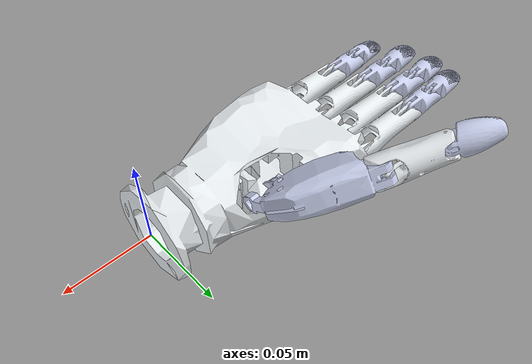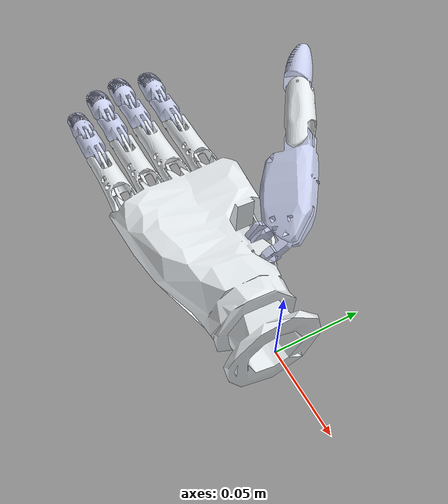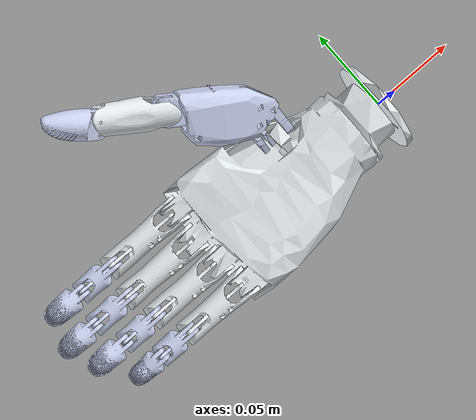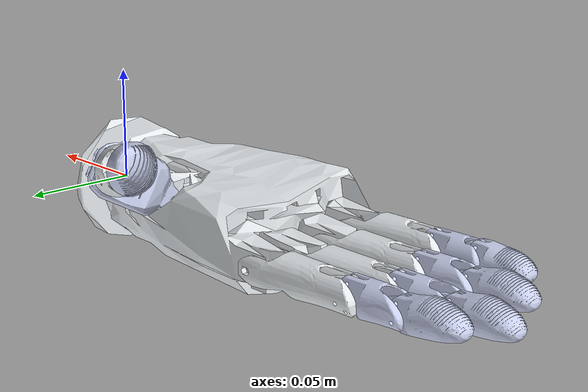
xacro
<?xml version="1.0" encoding="utf-8"?>
<robot
  name="rh_robothand_a0" xmlns:xacro="http://www.ros.org/wiki/xacro">
  <link
    name="rh_base_link">
    <inertial>
      <origin
        xyz="-0.0771315633048101 0.000550496064865218 -0.000878012041051911"
        rpy="0 0 0" />
      <mass
        value="0.264420980793865" />
      <inertia
        ixx="9.65922247312353E-05"
        ixy="3.79364211156786E-06"
        ixz="-2.74127423073502E-06"
        iyy="0.000130636569487036"
        iyz="4.12957678967436E-07"
        izz="0.000185626731781119" />
    </inertial>
    <visual>
      <origin
        xyz="0 0 0"
        rpy="0 0 0" />
      <geometry>
        <mesh
          filename="package://rh_robothand_a0_description/meshes/base_link.STL" />
      </geometry>
      <material
        name="">
        <color
          rgba="0.898039215686275 0.917647058823529 0.929411764705882 1" />
      </material>
    </visual>
    <collision>
      <origin
        xyz="-0.11 0 0"
        rpy="0 0 0" />
      <geometry>
        <box size="0.22 0.08 0.05"/>
      </geometry>
    </collision>
  </link>
  <link
    name="rh_LF1_Link">
    <inertial>
      <origin
        xyz="0.00111100024125576 -0.0243220192544273 -0.00176169275516479"
        rpy="0 0 0" />
      <mass
        value="0.0076305557950374" />
      <inertia
        ixx="1.35667005711329E-06"
        ixy="4.66789462745626E-10"
        ixz="-6.67193131781163E-11"
        iyy="1.62181652444189E-07"
        iyz="-2.84013230615189E-08"
        izz="1.26101212938848E-06" />
    </inertial>
    <visual>
      <origin
        xyz="0 0 0"
        rpy="0 0 0" />
      <geometry>
        <mesh
          filename="package://rh_robothand_a0_description/meshes/LF1_Link.STL" />
      </geometry>
      <material
        name="">
        <color
          rgba="0.898039215686275 0.917647058823529 0.929411764705882 1" />
      </material>
    </visual>
  </link>
  <joint
    name="rh_LF1"
    type="revolute">
    <origin
      xyz="-0.120667710792653 -0.0276205870569372 -0.0012196779370232"
      rpy="-3.14159265358979 0 1.5707963267949" />
    <parent
      link="rh_base_link" />
    <child
      link="rh_LF1_Link" />
    <axis
      xyz="-1 0 0" />
    <limit
      lower="-1.57"
      upper="0"
      effort="1"
      velocity="-0.5" />
    <dynamics
      damping="0.1"
      friction="0.1" />
    <mimic
      joint="rh_LF2"
      multiplier="1.8"
      offset="0" />
  </joint>
  <link
    name="rh_LF2_Link">
    <inertial>
      <origin
        xyz="-0.00104817337540824 -0.0116661936288779 0.00269074989953632"
        rpy="0 0 0" />
      <mass
        value="0.00204066265868655" />
      <inertia
        ixx="1.17778671570237E-07"
        ixy="-1.62775252396335E-10"
        ixz="1.1302836512966E-11"
        iyy="5.26718353122828E-08"
        iyz="3.53855830609837E-09"
        izz="1.21053493816484E-07" />
    </inertial>
    <visual>
      <origin
        xyz="0 0 0"
        rpy="0 0 0" />
      <geometry>
        <mesh
          filename="package://rh_robothand_a0_description/meshes/LF2_Link.STL" />
      </geometry>
      <material
        name="">
        <color
          rgba="0.796078431372549 0.823529411764706 0.937254901960784 1" />
      </material>
    </visual>
  </link>
  <joint
    name="rh_LF2"
    type="revolute">
    <origin
      xyz="0 -0.0400984606909391 -0.000233749430079859"
      rpy="3.14159265358979 0 3.14159265358979" />
    <parent
      link="rh_LF1_Link" />
    <child
      link="rh_LF2_Link" />
    <axis
      xyz="1 0 0" />
    <limit
      lower="-1.57"
      upper="0"
      effort="1"
      velocity="-0.5" />
    <dynamics
      damping="0.1"
      friction="0.1" />
    <mimic
      joint="rh_LF3"
      multiplier="1.8"
      offset="0" />
  </joint>
  <link
    name="rh_LF3_Link">
    <inertial>
      <origin
        xyz="-0.00105495450411704 -0.0102181768353214 0.00195647033954117"
        rpy="0 0 0" />
      <mass
        value="0.00243753133684015" />
      <inertia
        ixx="7.38791296895743E-08"
        ixy="1.49609271067263E-10"
        ixz="3.93391476730846E-11"
        iyy="3.99033735571686E-08"
        iyz="-1.41272693795679E-08"
        izz="7.62686330710667E-08" />
    </inertial>
    <visual>
      <origin
        xyz="0 0 0"
        rpy="0 0 0" />
      <geometry>
        <mesh
          filename="package://rh_robothand_a0_description/meshes/LF3_Link.STL" />
      </geometry>
      <material
        name="">
        <color
          rgba="0.796078431372549 0.823529411764706 0.937254901960784 1" />
      </material>
    </visual>
  </link>
  <joint
    name="rh_LF3"
    type="revolute">
    <origin
      xyz="4.99999999999043E-05 -0.0219426636355103 0.00158729725598191"
      rpy="0 0 0" />
    <parent
      link="rh_LF2_Link" />
    <child
      link="rh_LF3_Link" />
    <axis
      xyz="1 0 0" />
    <limit
      lower="-1"
      upper="0"
      effort="1"
      velocity="-0.5" />
    <dynamics
      damping="0.1"
      friction="0.1" />
  </joint>
  <link
    name="rh_RF1_Link">
    <inertial>
      <origin
        xyz="0.000820796423871568 -0.0262118595257119 -0.00188459504333765"
        rpy="0 0 0" />
      <mass
        value="0.00847314272707846" />
      <inertia
        ixx="1.86742668405035E-06"
        ixy="8.99349213555806E-10"
        ixz="-8.85319552426498E-11"
        iyy="1.63712775819506E-07"
        iyz="-2.06745517373156E-08"
        izz="1.77413216715691E-06" />
    </inertial>
    <visual>
      <origin
        xyz="0 0 0"
        rpy="0 0 0" />
      <geometry>
        <mesh
          filename="package://rh_robothand_a0_description/meshes/RF1_Link.STL" />
      </geometry>
      <material
        name="">
        <color
          rgba="0.898039215686275 0.917647058823529 0.929411764705882 1" />
      </material>
    </visual>
  </link>
  <joint
    name="rh_RF1"
    type="revolute">
    <origin
      xyz="-0.124667710792653 -0.00861989487209627 -0.00321967793702238"
      rpy="-3.14159265358979 0 1.5707963267949" />
    <parent
      link="rh_base_link" />
    <child
      link="rh_RF1_Link" />
    <axis
      xyz="-1 0 0" />
    <limit
      lower="-1.57"
      upper="0"
      effort="1"
      velocity="-0.5" />
    <dynamics
      damping="0.1"
      friction="0.1" />
    <mimic
      joint="rh_RF2"
      multiplier="1.8"
      offset="0" />
  </joint>
  <link
    name="rh_RF2_Link">
    <inertial>
      <origin
        xyz="-0.000902951596117497 -0.0126280881225271 0.00262967210406026"
        rpy="0 0 0" />
      <mass
        value="0.00216268866837306" />
      <inertia
        ixx="1.41711926667217E-07"
        ixy="-1.51197748976381E-10"
        ixz="-1.14724072124332E-11"
        iyy="5.52662064383787E-08"
        iyz="1.64557670781368E-09"
        izz="1.46903775339198E-07" />
    </inertial>
    <visual>
      <origin
        xyz="0 0 0"
        rpy="0 0 0" />
      <geometry>
        <mesh
          filename="package://rh_robothand_a0_description/meshes/RF2_Link.STL" />
      </geometry>
      <material
        name="">
        <color
          rgba="0.796078431372549 0.823529411764706 0.937254901960784 1" />
      </material>
    </visual>
  </link>
  <joint
    name="rh_RF2"
    type="revolute">
    <origin
      xyz="0 -0.0444999999936167 -0.000238749430078784"
      rpy="3.14159265358979 0 3.14159265358979" />
    <parent
      link="rh_RF1_Link" />
    <child
      link="rh_RF2_Link" />
    <axis
      xyz="1 0 0" />
    <limit
      lower="-1.57"
      upper="0"
      effort="1"
      velocity="-0.5" />
    <dynamics
      damping="0.1"
      friction="0.1" />
    <mimic
      joint="rh_RF3"
      multiplier="1.8"
      offset="0" />
  </joint>
  <link
    name="rh_RF3_Link">
    <inertial>
      <origin
        xyz="-0.000703365419428665 -0.0122037109807715 0.00356867915555399"
        rpy="0 0 0" />
      <mass
        value="0.00337008134334144" />
      <inertia
        ixx="1.25166789765623E-07"
        ixy="4.343373843868E-11"
        ixz="5.06915685346187E-11"
        iyy="6.19427433699616E-08"
        iyz="-1.72114517401565E-08"
        izz="1.35209619915522E-07" />
    </inertial>
    <visual>
      <origin
        xyz="0 0 0"
        rpy="0 0 0" />
      <geometry>
        <mesh
          filename="package://rh_robothand_a0_description/meshes/RF3_Link.STL" />
      </geometry>
      <material
        name="">
        <color
          rgba="0.796078431372549 0.823529411764706 0.937254901960784 1" />
      </material>
    </visual>
  </link>
  <joint
    name="rh_RF3"
    type="revolute">
    <origin
      xyz="-0.000200000000000051 -0.024496145135367 0.000434595797305881"
      rpy="0 0 0" />
    <parent
      link="rh_RF2_Link" />
    <child
      link="rh_RF3_Link" />
    <axis
      xyz="1 0 0" />
    <limit
      lower="-1"
      upper="0"
      effort="1"
      velocity="-0.5" />
    <dynamics
      damping="0.1"
      friction="0.1" />
  </joint>
  <link
    name="rh_MF1_Link">
    <inertial>
      <origin
        xyz="0.00102636353024867 -0.0277555297254293 -0.00193930885655732"
        rpy="0 0 0" />
      <mass
        value="0.00985006169632293" />
      <inertia
        ixx="2.3533652764249E-06"
        ixy="1.11633351017212E-09"
        ixz="3.15270283785722E-11"
        iyy="2.01845604038941E-07"
        iyz="-3.02263299219902E-08"
        izz="2.2339166399137E-06" />
    </inertial>
    <visual>
      <origin
        xyz="0 0 0"
        rpy="0 0 0" />
      <geometry>
        <mesh
          filename="package://rh_robothand_a0_description/meshes/MF1_Link.STL" />
      </geometry>
      <material
        name="">
        <color
          rgba="0.898039215686275 0.917647058823529 0.929411764705882 1" />
      </material>
    </visual>
  </link>
  <joint
    name="rh_MF1"
    type="revolute">
    <origin
      xyz="-0.126667710792653 0.00957941294306249 -0.00471967793702235"
      rpy="3.14159265358979 0 1.5707963267949" />
    <parent
      link="rh_base_link" />
    <child
      link="rh_MF1_Link" />
    <axis
      xyz="-1 0 0" />
    <limit
      lower="-1.57"
      upper="0"
      effort="1"
      velocity="-0.5" />
    <dynamics
      damping="0.1"
      friction="0.1" />
    <mimic
      joint="rh_MF2"
      multiplier="1.8"
      offset="0" />
  </joint>
  <link
    name="rh_MF2_Link">
    <inertial>
      <origin
        xyz="-0.00104307276229463 -0.0135838572124982 0.00246216330949421"
        rpy="0 0 0" />
      <mass
        value="0.00228824564195563" />
      <inertia
        ixx="1.70509222822927E-07"
        ixy="-1.57024143183247E-10"
        ixz="1.65317264307165E-11"
        iyy="5.93511820754865E-08"
        iyz="2.62979727863687E-11"
        izz="1.78362250956455E-07" />
    </inertial>
    <visual>
      <origin
        xyz="0 0 0"
        rpy="0 0 0" />
      <geometry>
        <mesh
          filename="package://rh_robothand_a0_description/meshes/MF2_Link.STL" />
      </geometry>
      <material
        name="">
        <color
          rgba="0.796078431372549 0.823529411764706 0.937254901960784 1" />
      </material>
    </visual>
  </link>
  <joint
    name="rh_MF2"
    type="revolute">
    <origin
      xyz="0 -0.0474999999936168 -0.000238749430078922"
      rpy="3.14159265358979 0 -3.14159265358979" />
    <parent
      link="rh_MF1_Link" />
    <child
      link="rh_MF2_Link" />
    <axis
      xyz="1 0 0" />
    <limit
      lower="-1.57"
      upper="0"
      effort="1"
      velocity="-0.5" />
    <dynamics
      damping="0.1"
      friction="0.1" />
    <mimic
      joint="rh_MF3"
      multiplier="1.8"
      offset="0" />
  </joint>
  <link
    name="rh_MF3_Link">
    <inertial>
      <origin
        xyz="-0.00100636785975747 -0.0123647736791516 0.00295571439606786"
        rpy="0 0 0" />
      <mass
        value="0.00336503153264149" />
      <inertia
        ixx="1.2557241842048E-07"
        ixy="5.10104696467692E-11"
        ixz="2.70455198461692E-11"
        iyy="6.35457112705361E-08"
        iyz="-2.09090029711852E-08"
        izz="1.32489650466898E-07" />
    </inertial>
    <visual>
      <origin
        xyz="0 0 0"
        rpy="0 0 0" />
      <geometry>
        <mesh
          filename="package://rh_robothand_a0_description/meshes/MF3_Link.STL" />
      </geometry>
      <material
        name="">
        <color
          rgba="0.796078431372549 0.823529411764706 0.937254901960784 1" />
      </material>
    </visual>
  </link>
  <joint
    name="rh_MF3"
    type="revolute">
    <origin
      xyz="0 -0.0264999981219051 0"
      rpy="0 0 0" />
    <parent
      link="rh_MF2_Link" />
    <child
      link="rh_MF3_Link" />
    <axis
      xyz="1 0 0" />
    <limit
      lower="-1"
      upper="0"
      effort="1"
      velocity="-0.5" />
    <dynamics
      damping="0.1"
      friction="0.1" />
  </joint>
  <link
    name="rh_FF1_Link">
    <inertial>
      <origin
        xyz="0.000820796423869424 -0.0262118595257167 -0.00188459504333683"
        rpy="0 0 0" />
      <mass
        value="0.00847314272707745" />
      <inertia
        ixx="1.8674266840491E-06"
        ixy="8.99349213630073E-10"
        ixz="-8.85319552535142E-11"
        iyy="1.63704475834967E-07"
        iyz="-2.06701781334727E-08"
        izz="1.77414046714019E-06" />
    </inertial>
    <visual>
      <origin
        xyz="0 0 0"
        rpy="0 0 0" />
      <geometry>
        <mesh
          filename="package://rh_robothand_a0_description/meshes/FF1_Link.STL" />
      </geometry>
      <material
        name="">
        <color
          rgba="0.898039215686275 0.917647058823529 0.929411764705882 1" />
      </material>
    </visual>
  </link>
  <joint
    name="rh_FF1"
    type="revolute">
    <origin
      xyz="-0.124667710792653 0.0283801051279036 -0.00321967793702234"
      rpy="3.14159265358979 0 1.57079632679489" />
    <parent
      link="rh_base_link" />
    <child
      link="rh_FF1_Link" />
    <axis
      xyz="-1 0 0" />
    <limit
      lower="-1.57"
      upper="0"
      effort="1"
      velocity="-0.5" />
    <dynamics
      damping="0.1"
      friction="0.1" />
    <mimic
      joint="rh_FF2"
      multiplier="1.8"
      offset="0" />
  </joint>
  <link
    name="rh_FF2_Link">
    <inertial>
      <origin
        xyz="-0.000876427685851701 -0.0126280888421312 0.00262967239679973"
        rpy="0 0 0" />
      <mass
        value="0.00216268848240887" />
      <inertia
        ixx="1.41711909816515E-07"
        ixy="-1.51194639208851E-10"
        ixz="-1.14737080958454E-11"
        iyy="5.52662028233286E-08"
        iyz="1.64557048809625E-09"
        izz="1.46903760637511E-07" />
    </inertial>
    <visual>
      <origin
        xyz="0 0 0"
        rpy="0 0 0" />
      <geometry>
        <mesh
          filename="package://rh_robothand_a0_description/meshes/FF2_Link.STL" />
      </geometry>
      <material
        name="">
        <color
          rgba="0.796078431372549 0.823529411764706 0.937254901960784 1" />
      </material>
    </visual>
  </link>
  <joint
    name="rh_FF2"
    type="revolute">
    <origin
      xyz="0 -0.0444999999936168 -0.000238749430078741"
      rpy="3.14159265358979 0 3.14159265358979" />
    <parent
      link="rh_FF1_Link" />
    <child
      link="rh_FF2_Link" />
    <axis
      xyz="1 0 0" />
    <limit
      lower="-1.57"
      upper="0"
      effort="1"
      velocity="-0.5" />
    <dynamics
      damping="0.1"
      friction="0.1" />
    <mimic
      joint="rh_FF3"
      multiplier="1.8"
      offset="0" />
  </joint>
  <link
    name="rh_FF3_Link">
    <inertial>
      <origin
        xyz="-0.000903358498992264 -0.0122037900802425 0.00356868608685759"
        rpy="0 0 0" />
      <mass
        value="0.00337011127275863" />
      <inertia
        ixx="1.25169688921475E-07"
        ixy="4.32936421175694E-11"
        ixz="5.0578196338882E-11"
        iyy="6.19428340213359E-08"
        iyz="-1.72118412336496E-08"
        izz="1.3521254363382E-07" />
    </inertial>
    <visual>
      <origin
        xyz="0 0 0"
        rpy="0 0 0" />
      <geometry>
        <mesh
          filename="package://rh_robothand_a0_description/meshes/FF3_Link.STL" />
      </geometry>
      <material
        name="">
        <color
          rgba="0.796078431372549 0.823529411764706 0.937254901960784 1" />
      </material>
    </visual>
  </link>
  <joint
    name="rh_FF3"
    type="revolute">
    <origin
      xyz="0 -0.024496145135367 0.000434595797305956"
      rpy="0 0 0" />
    <parent
      link="rh_FF2_Link" />
    <child
      link="rh_FF3_Link" />
    <axis
      xyz="1 0 0" />
    <limit
      lower="-1"
      upper="0"
      effort="1"
      velocity="0.5" />
    <dynamics
      damping="0.1"
      friction="0.1" />
  </joint>
  <link
    name="rh_TH1_Link">
    <inertial>
      <origin
        xyz="0.0152495536804474 -0.0275974123133982 0.0158461495422274"
        rpy="0 0 0" />
      <mass
        value="0.0376918113829352" />
      <inertia
        ixx="2.99123548575211E-06"
        ixy="7.07019748474569E-07"
        ixz="-3.50013749540922E-07"
        iyy="3.61465880885047E-06"
        iyz="9.96227342133479E-07"
        izz="4.89432122881815E-06" />
    </inertial>
    <visual>
      <origin
        xyz="0 0 0"
        rpy="0 0 0" />
      <geometry>
        <mesh
          filename="package://rh_robothand_a0_description/meshes/TH1_Link.STL" />
      </geometry>
      <material
        name="">
        <color
          rgba="0.796078431372549 0.823529411764706 0.937254901960784 1" />
      </material>
    </visual>
  </link>
  <joint
    name="rh_TH1"
    type="revolute">
    <origin
      xyz="-0.0584729772678924 0.0248430195360303 0.00855783635789703"
      rpy="0 0 -3.14159265358979" />
    <parent
      link="rh_base_link" />
    <child
      link="rh_TH1_Link" />
    <axis
      xyz="-1 0 0" />
    <limit
      lower="0"
      upper="1"
      effort="1"
      velocity="0.5" />
    <dynamics
      damping="0.1"
      friction="0.1" />
    <mimic
      joint="rh_TH2"
      multiplier="-1.8"
      offset="0" />
  </joint>
  <link
    name="rh_TH2_Link">
    <inertial>
      <origin
        xyz="0.000874971077754211 -0.0187539364666164 0.0120035911957873"
        rpy="0 0 0" />
      <mass
        value="0.00931281919634013" />
      <inertia
        ixx="1.44847487593902E-06"
        ixy="1.06362088074103E-09"
        ixz="-1.13105765934017E-09"
        iyy="5.80898320661338E-07"
        iyz="4.99088400535352E-07"
        izz="9.56319763291696E-07" />
    </inertial>
    <visual>
      <origin
        xyz="0 0 0"
        rpy="0 0 0" />
      <geometry>
        <mesh
          filename="package://rh_robothand_a0_description/meshes/TH2_Link.STL" />
      </geometry>
      <material
        name="">
        <color
          rgba="0.898039215686275 0.917647058823529 0.929411764705882 1" />
      </material>
    </visual>
  </link>
  <joint
    name="rh_TH2"
    type="revolute">
    <origin
      xyz="0.031184 -0.043702 0.024365"
      rpy="0 -1.0472 1.5708" />
    <parent
      link="rh_TH1_Link" />
    <child
      link="rh_TH2_Link" />
    <axis
      xyz="-1 0 0" />
    <limit
      lower="-0.65"
      upper="0"
      effort="1"
      velocity="-0.5" />
    <dynamics
      damping="0.1"
      friction="0.1" />
    <mimic
      joint="rh_TH3"
      multiplier="1.8"
      offset="0" />
  </joint>
  <link
    name="rh_TH3_Link">
    <inertial>
      <origin
        xyz="0.00085014160457153 -0.0115532101130959 0.00595133181255027"
        rpy="0 0 0" />
      <mass
        value="0.00491308218882966" />
      <inertia
        ixx="2.11224564508731E-07"
        ixy="1.76239828745854E-10"
        ixz="-1.12099152923722E-10"
        iyy="1.99583872523236E-07"
        iyz="4.49106746003971E-08"
        izz="1.60633584013748E-07" />
    </inertial>
    <visual>
      <origin
        xyz="0 0 0"
        rpy="0 0 0" />
      <geometry>
        <mesh
          filename="package://rh_robothand_a0_description/meshes/TH3_Link.STL" />
      </geometry>
      <material
        name="">
        <color
          rgba="0.796078431372549 0.823529411764706 0.937254901960784 1" />
      </material>
    </visual>
  </link>
  <joint
    name="rh_TH3"
    type="revolute">
    <origin
      xyz="0 -0.0308049280341684 0.0222498631188981"
      rpy="0 0 0" />
    <parent
      link="rh_TH2_Link" />
    <child
      link="rh_TH3_Link" />
    <axis
      xyz="-1 0 0" />
    <limit
      lower="-0.79"
      upper="0"
      effort="1"
      velocity="0.5" />
    <dynamics
      damping="0.1"
      friction="0.1" />
  </joint>
</robot>
